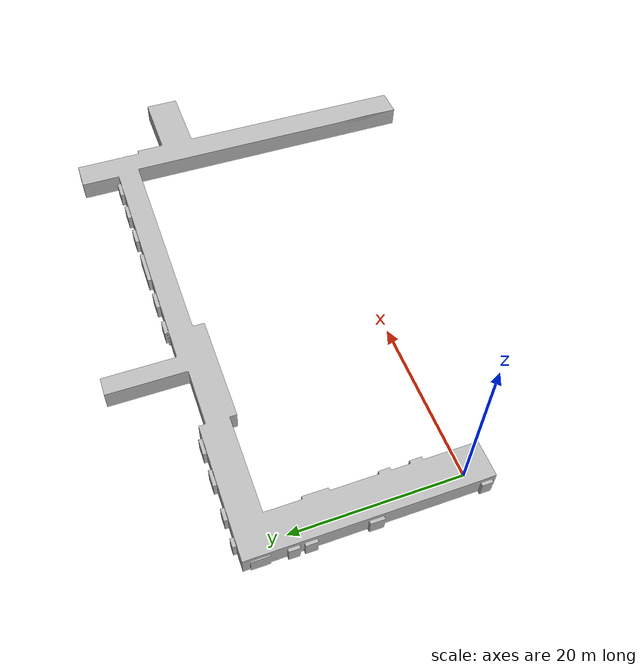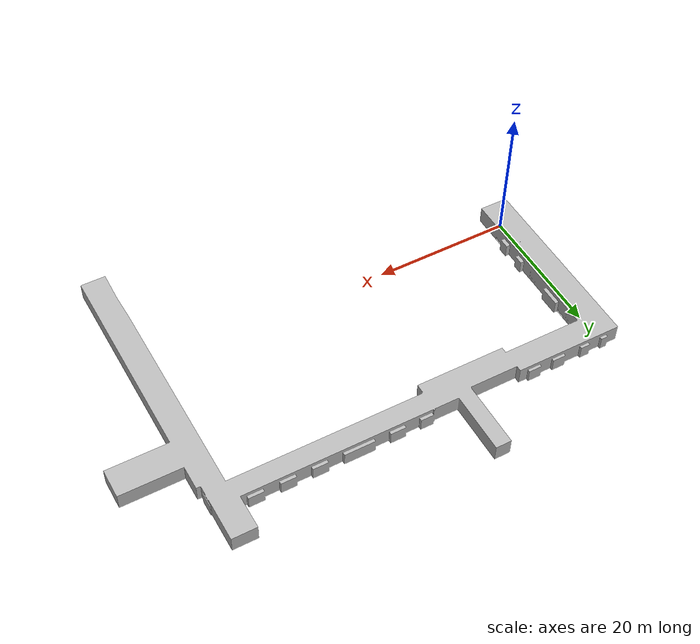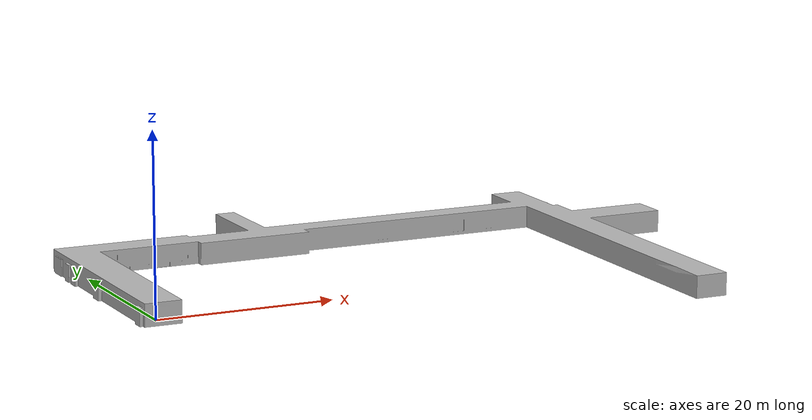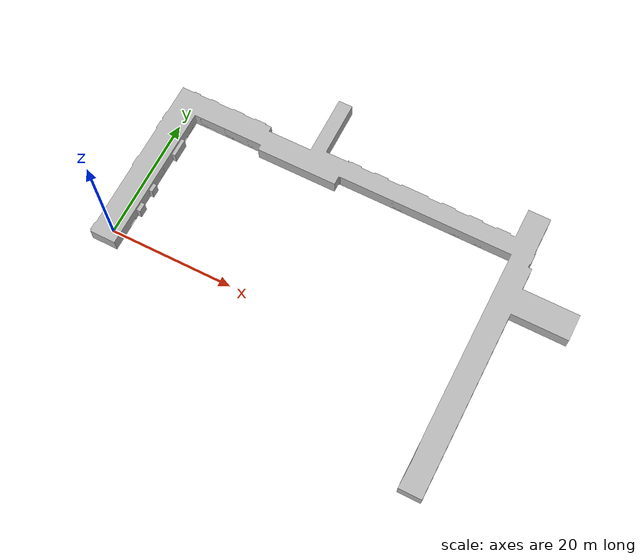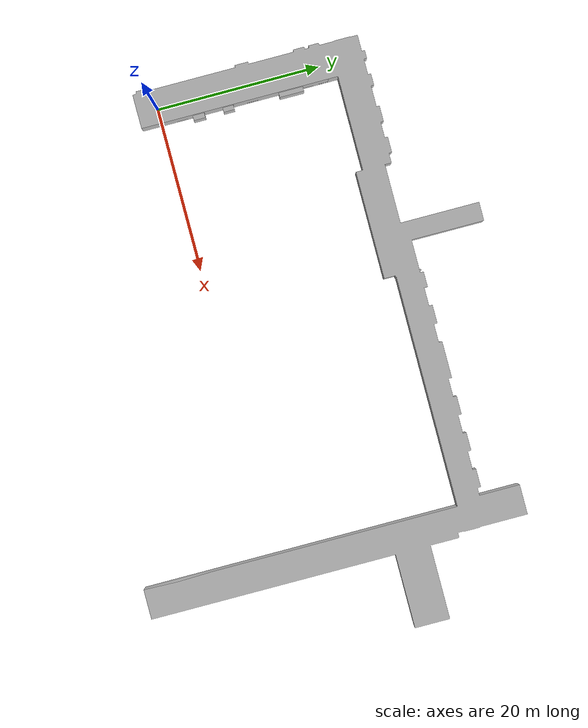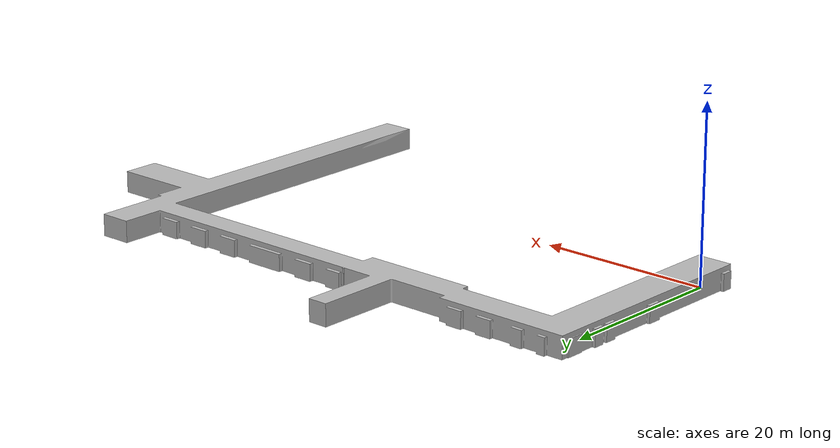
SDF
<?xml version="1.0"?>
<sdf version='1.4'>
  <world name='default'>
    <light name='sun' type='directional'>
      <cast_shadows>1</cast_shadows>
      <pose>0 0 10 0 -0 0</pose>
      <diffuse>0.8 0.8 0.8 1</diffuse>
      <specular>0.2 0.2 0.2 1</specular>
      <attenuation>
        <range>1000</range>
        <constant>0.3</constant>
        <linear>0.02</linear>
        <quadratic>0.001</quadratic>
      </attenuation>
      <direction>-0.5 0.1 -0.9</direction>
    </light>
    <include><uri>model://esat_corridor_v1</uri></include>
    <physics type='ode'>
      <max_step_size>0.001</max_step_size>
      <real_time_factor>1</real_time_factor>
      <real_time_update_rate>1000</real_time_update_rate>
      <gravity>0 0 -9.8</gravity>
    </physics>
    <scene>
      <ambient>0.1 0.1 0.1 1</ambient>
      <background>0.1 0.1 0.1 1</background>
      <shadows>0</shadows>
    </scene>
    <spherical_coordinates>
      <surface_model>EARTH_WGS84</surface_model>
      <latitude_deg>0</latitude_deg>
      <longitude_deg>0</longitude_deg>
      <elevation>0</elevation>
      <heading_deg>0</heading_deg>
    </spherical_coordinates>
    <light name='lightball' type='diffuse'>
      <cast_shadows>1</cast_shadows>
      <diffuse>0.8 0.8 0.8 1</diffuse>
      <attenuation>
        <range>1000</range>
        <constant>0.3</constant>
        <linear>0.02</linear>
        <quadratic>0.001</quadratic>
      </attenuation>
      <direction>-0.5 0.1 -0.9</direction>
      <pose>0 0 2 0 -0 0</pose>
    </light>
    <light name='lightball2' type='diffuse'>
      <cast_shadows>1</cast_shadows>
      <diffuse>0.8 0.8 0.8 1</diffuse>
      <attenuation>
        <range>1000</range>
        <constant>0.3</constant>
        <linear>0.02</linear>
        <quadratic>0.001</quadratic>
      </attenuation>
      <direction>-0.5 0.1 -0.9</direction>
      <pose>0 24 2 2 -0 0</pose>
    </light>
    <light name='lightball2b' type='diffuse'>
      <cast_shadows>1</cast_shadows>
      <diffuse>0.8 0.8 0.8 1</diffuse>
      <attenuation>
        <range>1000</range>
        <constant>0.3</constant>
        <linear>0.02</linear>
        <quadratic>0.001</quadratic>
      </attenuation>
      <direction>0.5 -0.1 0.9</direction>
      <pose>0 12 1.5 2 -0 0</pose>
    </light>

    <light name='lightball2a' type='diffuse'>
      <cast_shadows>1</cast_shadows>
      <diffuse>0.8 0.8 0.8 1</diffuse>
      <attenuation>
        <range>1000</range>
        <constant>0.3</constant>
        <linear>0.02</linear>
        <quadratic>0.001</quadratic>
      </attenuation>
      <direction>-0.5 0.1 -0.9</direction>
      <pose>0 12 2 0 -0 0</pose>
    </light>
    <light name='lightball3' type='diffuse'>
      <cast_shadows>1</cast_shadows>
      <diffuse>0.8 0.8 0.8 1</diffuse>
      <attenuation>
        <range>1000</range>
        <constant>0.3</constant>
        <linear>0.02</linear>
        <quadratic>0.001</quadratic>
      </attenuation>
      <direction>-0.5 0.1 -0.9</direction>
      <pose>22 24 2 0 -0 0</pose>
    </light>
    <light name='lightball3a' type='diffuse'>
      <cast_shadows>1</cast_shadows>
      <diffuse>0.8 0.8 0.8 1</diffuse>
      <attenuation>
        <range>1000</range>
        <constant>0.3</constant>
        <linear>0.02</linear>
        <quadratic>0.001</quadratic>
      </attenuation>
      <direction>-0.5 0.1 -0.9</direction>
      <pose>12 24 2 0 -0 0</pose>
    </light>
    <light name='lightball4' type='diffuse'>
      <cast_shadows>1</cast_shadows>
      <diffuse>0.8 0.8 0.8 1</diffuse>
      <attenuation>
        <range>1000</range>
        <constant>0.3</constant>
        <linear>0.02</linear>
        <quadratic>0.001</quadratic>
      </attenuation>
      <direction>-0.5 0.1 -0.9</direction>
      <pose>56 24 2 0 -0 0</pose>
    </light>
    <light name='lightball4a' type='diffuse'>
      <cast_shadows>1</cast_shadows>
      <diffuse>0.8 0.8 0.8 1</diffuse>
      <attenuation>
        <range>1000</range>
        <constant>0.3</constant>
        <linear>0.02</linear>
        <quadratic>0.001</quadratic>
      </attenuation>
      <direction>-0.5 0.1 -0.9</direction>
      <pose>44 24 2 0 -0 0</pose>
    </light>
    <light name='lightball5' type='diffuse'>
      <cast_shadows>1</cast_shadows>
      <diffuse>0.8 0.8 0.8 1</diffuse>
      <attenuation>
        <range>1000</range>
        <constant>0.3</constant>
        <linear>0.02</linear>
        <quadratic>0.001</quadratic>
      </attenuation>
      <direction>-0.5 0.1 -0.9</direction>
      <pose>56 -10 2 0 -0 0</pose>
    </light>
    <gui fullscreen='0'>
      <camera name='user_camera'>
        <pose>-30 -35 51.15 0 0.788 1.57</pose>
        <view_controller>orbit</view_controller>
      </camera>
    </gui>
  </world>
</sdf>

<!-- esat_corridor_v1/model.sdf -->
<sdf version='1.4'>
  <model name='esat_corridor_v1'>
    <pose>16 -2 0  0 0 3.14</pose>
      <static>1</static>
      <link name='body'>
        <visual name='visual'>
          <geometry>
            <mesh>
              <uri>model://esat_corridor_v1/esat.dae</uri>
            </mesh>
          </geometry>
        </visual>
        <collision name='collision'>
          <geometry>
            <mesh>
              <uri>model://esat_corridor_v1/esat.dae</uri>
            </mesh>
          </geometry>
          <max_contacts>10000</max_contacts>
          <surface>
            <bounce/>
            <friction>
              <ode/>
            </friction>
            <contact>
              <ode/>
            </contact>
          </surface>
        </collision>
        <velocity_decay>
          <linear>0</linear>
          <angular>0</angular>
        </velocity_decay>
        <self_collide>0</self_collide>
        <kinematic>0</kinematic>
        <gravity>1</gravity>
      </link>
    </model>
</sdf>
